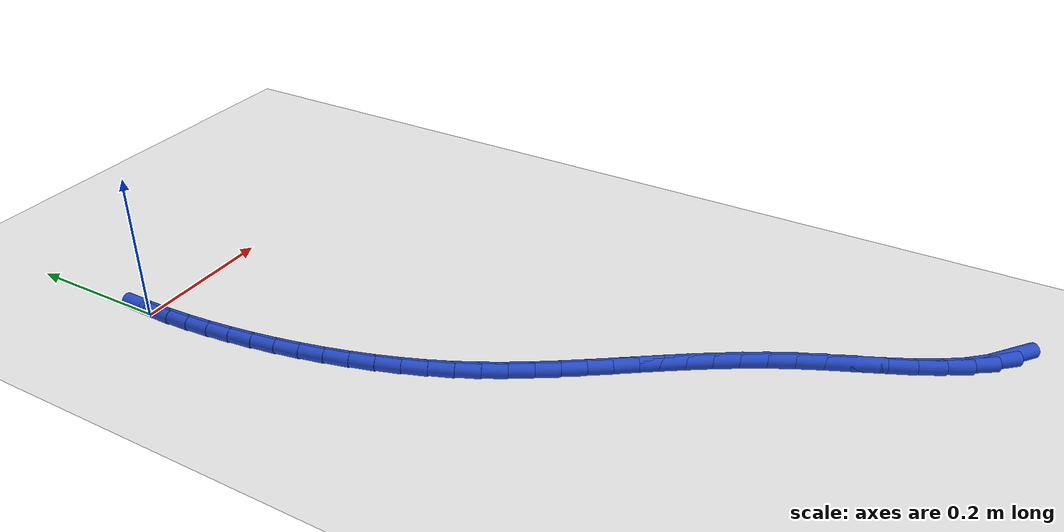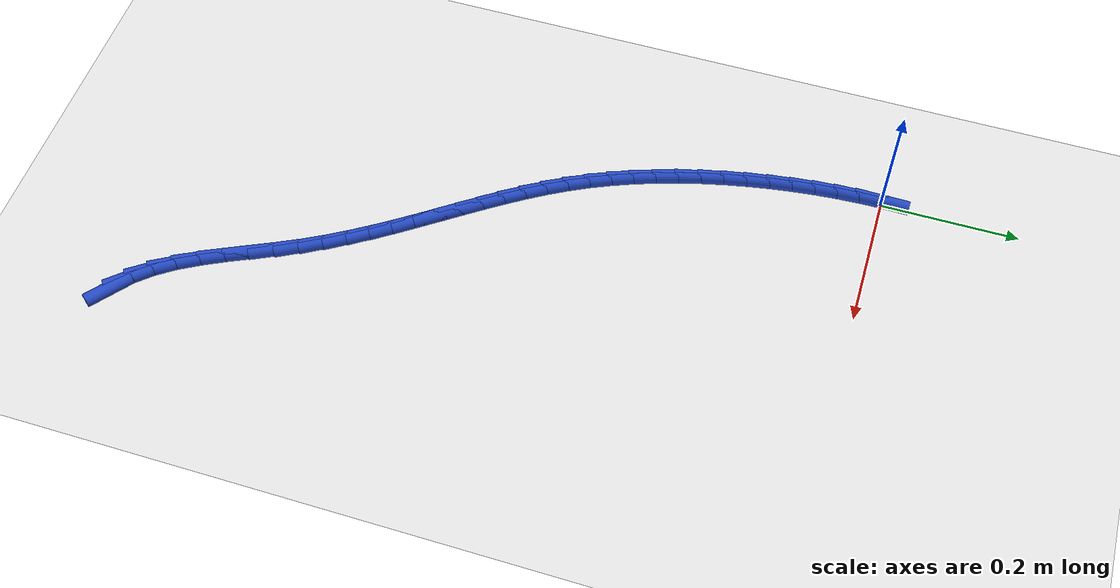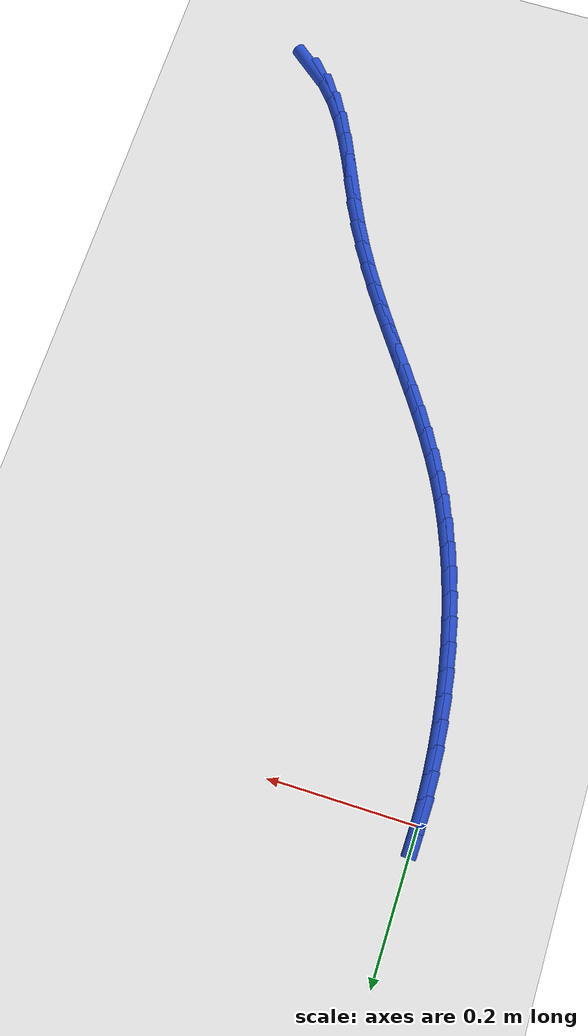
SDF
<sdf version="1.6">
 <world name="default">
  <model name="ground_plane">
   <static>1</static>
   <link name="link">
    <collision name="collision">
     <geometry><plane><normal>0 0 1</normal><size>100 100</size></plane></geometry>
     <surface><friction><ode><mu>100</mu><mu2>50</mu2></ode></friction></surface>
    </collision>
    <visual name="visual">
     <cast_shadows>0</cast_shadows>
     <geometry><plane><normal>0 0 1</normal><size>100 100</size></plane></geometry>
     <material>
      <script><uri>file://media/materials/scripts/gazebo.material</uri><name>Gazebo/WhiteGlow</name></script>
     </material>
    </visual>
   </link>
  </model>
  <model name="line">
   <link name="link_0">
    <pose>-1.3010426069826053e-18 2.0816681711721685e-17 0.01 0 1.57 1.5551723138670699</pose>
    <collision name="collision">
     <geometry><cylinder><radius>0.01</radius><length>0.08</length></cylinder></geometry>
    </collision>
    <visual name="visual">
     <material>
      <script><name>Gazebo/Blue</name><uri>file://media/materials/scripts/gazebo.material</uri></script>
     </material>
     <geometry><cylinder><radius>0.01</radius><length>0.08</length></cylinder></geometry>
    </visual>
   </link>
   <link name="link_246">
    <pose>0.45701341826037833 -0.9975089601714034 0.01 0 1.57 -0.6739783446185525</pose>
    <collision name="collision">
     <geometry><cylinder><radius>0.01</radius><length>0.08</length></cylinder></geometry>
    </collision>
    <visual name="visual">
     <material>
      <script><name>Gazebo/Blue</name><uri>file://media/materials/scripts/gazebo.material</uri></script>
     </material>
     <geometry><cylinder><radius>0.01</radius><length>0.08</length></cylinder></geometry>
    </visual>
   </link>
   <link name="link_247">
    <pose>0.4333603988952363 -0.9786161085356669 0.01 0 1.57 -0.8420386270792708</pose>
    <collision name="collision">
     <geometry><cylinder><radius>0.01</radius><length>0.08</length></cylinder></geometry>
    </collision>
    <visual name="visual">
     <material>
      <script><name>Gazebo/Blue</name><uri>file://media/materials/scripts/gazebo.material</uri></script>
     </material>
     <geometry><cylinder><radius>0.01</radius><length>0.08</length></cylinder></geometry>
    </visual>
   </link>
   <link name="link_248">
    <pose>0.4125742214974263 -0.955331042648298 0.01 0 1.57 -0.9673182549065727</pose>
    <collision name="collision">
     <geometry><cylinder><radius>0.01</radius><length>0.08</length></cylinder></geometry>
    </collision>
    <visual name="visual">
     <material>
      <script><name>Gazebo/Blue</name><uri>file://media/materials/scripts/gazebo.material</uri></script>
     </material>
     <geometry><cylinder><radius>0.01</radius><length>0.08</length></cylinder></geometry>
    </visual>
   </link>
   <link name="link_249">
    <pose>0.3940830504145047 -0.9285032764912226 0.01 0 1.57 -1.0542360984930415</pose>
    <collision name="collision">
     <geometry><cylinder><radius>0.01</radius><length>0.08</length></cylinder></geometry>
    </collision>
    <visual name="visual">
     <material>
      <script><name>Gazebo/Blue</name><uri>file://media/materials/scripts/gazebo.material</uri></script>
     </material>
     <geometry><cylinder><radius>0.01</radius><length>0.08</length></cylinder></geometry>
    </visual>
   </link>
   <link name="link_250">
    <pose>0.37731504999402776 -0.8989823240463657 0.01 0 1.57 -1.10882453978176</pose>
    <collision name="collision">
     <geometry><cylinder><radius>0.01</radius><length>0.08</length></cylinder></geometry>
    </collision>
    <visual name="visual">
     <material>
      <script><name>Gazebo/Blue</name><uri>file://media/materials/scripts/gazebo.material</uri></script>
     </material>
     <geometry><cylinder><radius>0.01</radius><length>0.08</length></cylinder></geometry>
    </visual>
   </link>
   <link name="link_251">
    <pose>0.3616983845835522 -0.8676176992956534 0.01 0 1.57 -1.1357843417351752</pose>
    <collision name="collision">
     <geometry><cylinder><radius>0.01</radius><length>0.08</length></cylinder></geometry>
    </collision>
    <visual name="visual">
     <material>
      <script><name>Gazebo/Blue</name><uri>file://media/materials/scripts/gazebo.material</uri></script>
     </material>
     <geometry><cylinder><radius>0.01</radius><length>0.08</length></cylinder></geometry>
    </visual>
   </link>
   <link name="link_252">
    <pose>0.34666121853063364 -0.8352589162210096 0.01 0 1.57 -1.1376806310161653</pose>
    <collision name="collision">
     <geometry><cylinder><radius>0.01</radius><length>0.08</length></cylinder></geometry>
    </collision>
    <visual name="visual">
     <material>
      <script><name>Gazebo/Blue</name><uri>file://media/materials/scripts/gazebo.material</uri></script>
     </material>
     <geometry><cylinder><radius>0.01</radius><length>0.08</length></cylinder></geometry>
    </visual>
   </link>
   <link name="link_253">
    <pose>0.3316317161828297 -0.8027554888043626 0.01 0 1.57 -1.1148954513755638</pose>
    <collision name="collision">
     <geometry><cylinder><radius>0.01</radius><length>0.08</length></cylinder></geometry>
    </collision>
    <visual name="visual">
     <material>
      <script><name>Gazebo/Blue</name><uri>file://media/materials/scripts/gazebo.material</uri></script>
     </material>
     <geometry><cylinder><radius>0.01</radius><length>0.08</length></cylinder></geometry>
    </visual>
   </link>
   <link name="link_254">
    <pose>0.3160387180187225 -0.7709560010825108 0.01 0 1.57 -1.0745506287754996</pose>
    <collision name="collision">
     <geometry><cylinder><radius>0.01</radius><length>0.08</length></cylinder></geometry>
    </collision>
    <visual name="visual">
     <material>
      <script><name>Gazebo/Blue</name><uri>file://media/materials/scripts/gazebo.material</uri></script>
     </material>
     <geometry><cylinder><radius>0.01</radius><length>0.08</length></cylinder></geometry>
    </visual>
   </link>
   <link name="link_255">
    <pose>0.2995121360835666 -0.7404324848917365 0.01 0 1.57 -1.0367401942527719</pose>
    <collision name="collision">
     <geometry><cylinder><radius>0.01</radius><length>0.08</length></cylinder></geometry>
    </collision>
    <visual name="visual">
     <material>
      <script><name>Gazebo/Blue</name><uri>file://media/materials/scripts/gazebo.material</uri></script>
     </material>
     <geometry><cylinder><radius>0.01</radius><length>0.08</length></cylinder></geometry>
    </visual>
   </link>
   <link name="link_256">
    <pose>0.28216284599831437 -0.7110954586707217 0.01 0 1.57 -1.005118371279607</pose>
    <collision name="collision">
     <geometry><cylinder><radius>0.01</radius><length>0.08</length></cylinder></geometry>
    </collision>
    <visual name="visual">
     <material>
      <script><name>Gazebo/Blue</name><uri>file://media/materials/scripts/gazebo.material</uri></script>
     </material>
     <geometry><cylinder><radius>0.01</radius><length>0.08</length></cylinder></geometry>
    </visual>
   </link>
   <link name="link_257">
    <pose>0.2641721285151397 -0.6827586062122099 0.01 0 1.57 -0.9802273879545972</pose>
    <collision name="collision">
     <geometry><cylinder><radius>0.01</radius><length>0.08</length></cylinder></geometry>
    </collision>
    <visual name="visual">
     <material>
      <script><name>Gazebo/Blue</name><uri>file://media/materials/scripts/gazebo.material</uri></script>
     </material>
     <geometry><cylinder><radius>0.01</radius><length>0.08</length></cylinder></geometry>
    </visual>
   </link>
   <link name="link_258">
    <pose>0.2457212643862163 -0.6552356113089446 0.01 0 1.57 -0.962497164223871</pose>
    <collision name="collision">
     <geometry><cylinder><radius>0.01</radius><length>0.08</length></cylinder></geometry>
    </collision>
    <visual name="visual">
     <material>
      <script><name>Gazebo/Blue</name><uri>file://media/materials/scripts/gazebo.material</uri></script>
     </material>
     <geometry><cylinder><radius>0.01</radius><length>0.08</length></cylinder></geometry>
    </visual>
   </link>
   <link name="link_259">
    <pose>0.22699153436371797 -0.6283401577536694 0.01 0 1.57 -0.9522650923725955</pose>
    <collision name="collision">
     <geometry><cylinder><radius>0.01</radius><length>0.08</length></cylinder></geometry>
    </collision>
    <visual name="visual">
     <material>
      <script><name>Gazebo/Blue</name><uri>file://media/materials/scripts/gazebo.material</uri></script>
     </material>
     <geometry><cylinder><radius>0.01</radius><length>0.08</length></cylinder></geometry>
    </visual>
   </link>
   <link name="link_260">
    <pose>0.2081642191998184 -0.6018859293391274 0.01 0 1.57 -0.9497935770698704</pose>
    <collision name="collision">
     <geometry><cylinder><radius>0.01</radius><length>0.08</length></cylinder></geometry>
    </collision>
    <visual name="visual">
     <material>
      <script><name>Gazebo/Blue</name><uri>file://media/materials/scripts/gazebo.material</uri></script>
     </material>
     <geometry><cylinder><radius>0.01</radius><length>0.08</length></cylinder></geometry>
    </visual>
   </link>
   <link name="link_261">
    <pose>0.18942059964669083 -0.5756866098580616 0.01 0 1.57 -0.9552801586805051</pose>
    <collision name="collision">
     <geometry><cylinder><radius>0.01</radius><length>0.08</length></cylinder></geometry>
    </collision>
    <visual name="visual">
     <material>
      <script><name>Gazebo/Blue</name><uri>file://media/materials/scripts/gazebo.material</uri></script>
     </material>
     <geometry><cylinder><radius>0.01</radius><length>0.08</length></cylinder></geometry>
    </visual>
   </link>
   <link name="link_262">
    <pose>0.1709419564565102 -0.5495558831032171 0.01 0 1.57 -0.9688563273538104</pose>
    <collision name="collision">
     <geometry><cylinder><radius>0.01</radius><length>0.08</length></cylinder></geometry>
    </collision>
    <visual name="visual">
     <material>
      <script><name>Gazebo/Blue</name><uri>file://media/materials/scripts/gazebo.material</uri></script>
     </material>
     <geometry><cylinder><radius>0.01</radius><length>0.08</length></cylinder></geometry>
    </visual>
   </link>
   <link name="link_263">
    <pose>0.15290957038144964 -0.5233074328673359 0.01 0 1.57 -0.9905725238818335</pose>
    <collision name="collision">
     <geometry><cylinder><radius>0.01</radius><length>0.08</length></cylinder></geometry>
    </collision>
    <visual name="visual">
     <material>
      <script><name>Gazebo/Blue</name><uri>file://media/materials/scripts/gazebo.material</uri></script>
     </material>
     <geometry><cylinder><radius>0.01</radius><length>0.08</length></cylinder></geometry>
    </visual>
   </link>
   <link name="link_264">
    <pose>0.13550472217368303 -0.49675494294316247 0.01 0 1.57 -1.0203685807838374</pose>
    <collision name="collision">
     <geometry><cylinder><radius>0.01</radius><length>0.08</length></cylinder></geometry>
    </collision>
    <visual name="visual">
     <material>
      <script><name>Gazebo/Blue</name><uri>file://media/materials/scripts/gazebo.material</uri></script>
     </material>
     <geometry><cylinder><radius>0.01</radius><length>0.08</length></cylinder></geometry>
    </visual>
   </link>
   <link name="link_265">
    <pose>0.11890869258538403 -0.46971209712343936 0.01 0 1.57 -1.0580314640093837</pose>
    <collision name="collision">
     <geometry><cylinder><radius>0.01</radius><length>0.08</length></cylinder></geometry>
    </collision>
    <visual name="visual">
     <material>
      <script><name>Gazebo/Blue</name><uri>file://media/materials/scripts/gazebo.material</uri></script>
     </material>
     <geometry><cylinder><radius>0.01</radius><length>0.08</length></cylinder></geometry>
    </visual>
   </link>
   <link name="link_266">
    <pose>0.10330276236872644 -0.4419925792009105 0.01 0 1.57 -1.1025483931806108</pose>
    <collision name="collision">
     <geometry><cylinder><radius>0.01</radius><length>0.08</length></cylinder></geometry>
    </collision>
    <visual name="visual">
     <material>
      <script><name>Gazebo/Blue</name><uri>file://media/materials/scripts/gazebo.material</uri></script>
     </material>
     <geometry><cylinder><radius>0.01</radius><length>0.08</length></cylinder></geometry>
    </visual>
   </link>
   <link name="link_267">
    <pose>0.08885515067704378 -0.41342664696647785 0.01 0 1.57 -1.147612554736811</pose>
    <collision name="collision">
     <geometry><cylinder><radius>0.01</radius><length>0.08</length></cylinder></geometry>
    </collision>
    <visual name="visual">
     <material>
      <script><name>Gazebo/Blue</name><uri>file://media/materials/scripts/gazebo.material</uri></script>
     </material>
     <geometry><cylinder><radius>0.01</radius><length>0.08</length></cylinder></geometry>
    </visual>
   </link>
   <link name="link_268">
    <pose>0.07560515562049981 -0.3840081474590569 0.01 0 1.57 -1.1899211480770324</pose>
    <collision name="collision">
     <geometry><cylinder><radius>0.01</radius><length>0.08</length></cylinder></geometry>
    </collision>
    <visual name="visual">
     <material>
      <script><name>Gazebo/Blue</name><uri>file://media/materials/scripts/gazebo.material</uri></script>
     </material>
     <geometry><cylinder><radius>0.01</radius><length>0.08</length></cylinder></geometry>
    </visual>
   </link>
   <link name="link_269">
    <pose>0.06351863066343715 -0.353824122389938 0.01 0 1.57 -1.2296094482653088</pose>
    <collision name="collision">
     <geometry><cylinder><radius>0.01</radius><length>0.08</length></cylinder></geometry>
    </collision>
    <visual name="visual">
     <material>
      <script><name>Gazebo/Blue</name><uri>file://media/materials/scripts/gazebo.material</uri></script>
     </material>
     <geometry><cylinder><radius>0.01</radius><length>0.08</length></cylinder></geometry>
    </visual>
   </link>
   <link name="link_270">
    <pose>0.05256057645943819 -0.32296269561082386 0.01 0 1.57 -1.2668621091304235</pose>
    <collision name="collision">
     <geometry><cylinder><radius>0.01</radius><length>0.08</length></cylinder></geometry>
    </collision>
    <visual name="visual">
     <material>
      <script><name>Gazebo/Blue</name><uri>file://media/materials/scripts/gazebo.material</uri></script>
     </material>
     <geometry><cylinder><radius>0.01</radius><length>0.08</length></cylinder></geometry>
    </visual>
   </link>
   <link name="link_271">
    <pose>0.04269599366208628 -0.2915119909734199 0.01 0 1.57 -1.30186719427866</pose>
    <collision name="collision">
     <geometry><cylinder><radius>0.01</radius><length>0.08</length></cylinder></geometry>
    </collision>
    <visual name="visual">
     <material>
      <script><name>Gazebo/Blue</name><uri>file://media/materials/scripts/gazebo.material</uri></script>
     </material>
     <geometry><cylinder><radius>0.01</radius><length>0.08</length></cylinder></geometry>
    </visual>
   </link>
   <link name="link_272">
    <pose>0.03388988292496378 -0.2595601323294286 0.01 0 1.57 -1.3348112785082347</pose>
    <collision name="collision">
     <geometry><cylinder><radius>0.01</radius><length>0.08</length></cylinder></geometry>
    </collision>
    <visual name="visual">
     <material>
      <script><name>Gazebo/Blue</name><uri>file://media/materials/scripts/gazebo.material</uri></script>
     </material>
     <geometry><cylinder><radius>0.01</radius><length>0.08</length></cylinder></geometry>
    </visual>
   </link>
   <link name="link_273">
    <pose>0.026107244901653382 -0.22719524353055376 0.01 0 1.57 -1.365986089380284</pose>
    <collision name="collision">
     <geometry><cylinder><radius>0.01</radius><length>0.08</length></cylinder></geometry>
    </collision>
    <visual name="visual">
     <material>
      <script><name>Gazebo/Blue</name><uri>file://media/materials/scripts/gazebo.material</uri></script>
     </material>
     <geometry><cylinder><radius>0.01</radius><length>0.08</length></cylinder></geometry>
    </visual>
   </link>
   <link name="link_274">
    <pose>0.019318252907538244 -0.19451231187487078 0.01 0 1.57 -1.3963090244911691</pose>
    <collision name="collision">
     <geometry><cylinder><radius>0.01</radius><length>0.08</length></cylinder></geometry>
    </collision>
    <visual name="visual">
     <material>
      <script><name>Gazebo/Blue</name><uri>file://media/materials/scripts/gazebo.material</uri></script>
     </material>
     <geometry><cylinder><radius>0.01</radius><length>0.08</length></cylinder></geometry>
    </visual>
   </link>
   <link name="link_275">
    <pose>0.013525069843267921 -0.16164877066048536 0.01 0 1.57 -1.4263868409996057</pose>
    <collision name="collision">
     <geometry><cylinder><radius>0.01</radius><length>0.08</length></cylinder></geometry>
    </collision>
    <visual name="visual">
     <material>
      <script><name>Gazebo/Blue</name><uri>file://media/materials/scripts/gazebo.material</uri></script>
     </material>
     <geometry><cylinder><radius>0.01</radius><length>0.08</length></cylinder></geometry>
    </visual>
   </link>
   <link name="link_276">
    <pose>0.008742073552964247 -0.12875826081953998 0.01 0 1.57 -1.456583378581358</pose>
    <collision name="collision">
     <geometry><cylinder><radius>0.01</radius><length>0.08</length></cylinder></geometry>
    </collision>
    <visual name="visual">
     <material>
      <script><name>Gazebo/Blue</name><uri>file://media/materials/scripts/gazebo.material</uri></script>
     </material>
     <geometry><cylinder><radius>0.01</radius><length>0.08</length></cylinder></geometry>
    </visual>
   </link>
   <link name="link_277">
    <pose>0.004983666230056424 -0.09599445559252678 0.01 0 1.57 -1.4872740535387852</pose>
    <collision name="collision">
     <geometry><cylinder><radius>0.01</radius><length>0.08</length></cylinder></geometry>
    </collision>
    <visual name="visual">
     <material>
      <script><name>Gazebo/Blue</name><uri>file://media/materials/scripts/gazebo.material</uri></script>
     </material>
     <geometry><cylinder><radius>0.01</radius><length>0.08</length></cylinder></geometry>
    </visual>
   </link>
   <link name="link_278">
    <pose>0.0022642500679736464 -0.06351102821993782 0.01 0 1.57 -1.5188600718910024</pose>
    <collision name="collision">
     <geometry><cylinder><radius>0.01</radius><length>0.08</length></cylinder></geometry>
    </collision>
    <visual name="visual">
     <material>
      <script><name>Gazebo/Blue</name><uri>file://media/materials/scripts/gazebo.material</uri></script>
     </material>
     <geometry><cylinder><radius>0.01</radius><length>0.08</length></cylinder></geometry>
    </visual>
   </link>
   <link name="link_279">
    <pose>0.0005982272601450711 -0.03146165194226412 0.01 0 1.57 -1.5517841280597724</pose>
    <collision name="collision">
     <geometry><cylinder><radius>0.01</radius><length>0.08</length></cylinder></geometry>
    </collision>
    <visual name="visual">
     <material>
      <script><name>Gazebo/Blue</name><uri>file://media/materials/scripts/gazebo.material</uri></script>
     </material>
     <geometry><cylinder><radius>0.01</radius><length>0.08</length></cylinder></geometry>
    </visual>
   </link>
  </model>
 </world>
</sdf>
